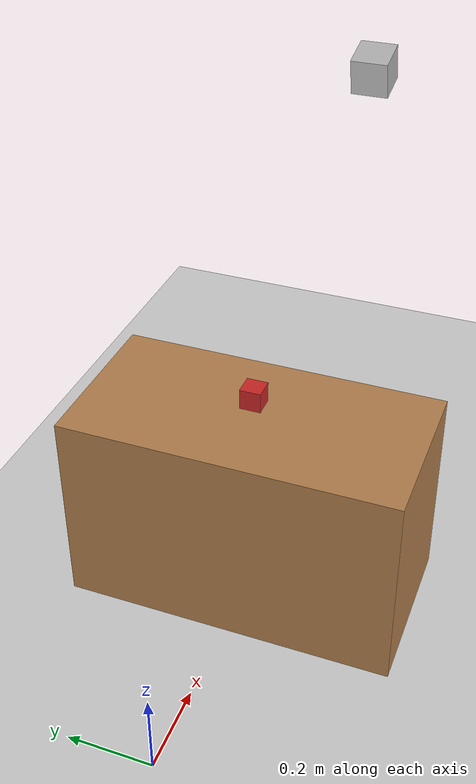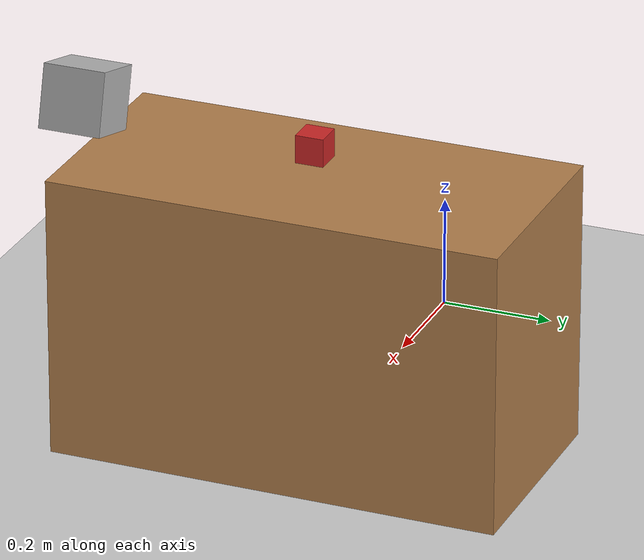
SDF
<?xml version="1.0" ?>
<sdf version="1.6">
  <world name="default">

    <include>
      <uri>model://sun</uri>
    </include>
    <include>
      <uri>model://ground_plane</uri>
    </include>

    <model name="table_box">
      <static>true</static> <pose>0.6 0.0 0.25 0 0 0</pose> <link name="link">
        <visual name="visual">
          <geometry>
            <box>
              <size>0.4 0.8 0.5</size> </box>
          </geometry>
          <material>
            <script>
              <uri>file://media/materials/scripts/gazebo.material</uri>
              <name>Gazebo/Wood</name>
            </script>
          </material>
        </visual>
        <collision name="collision">
          <geometry>
            <box>
              <size>0.4 0.8 0.5</size>
            </box>
          </geometry>
        </collision>
      </link>
    </model>

    <model name="red_cube">
      <static>false</static> <pose>0.6 0.0 0.55 0 0 0</pose> <link name="link">
        <inertial>
          <mass>0.1</mass> <inertia>
            <ixx>0.0001</ixx> <ixy>0</ixy> <ixz>0</ixz>
            <iyy>0.0001</iyy> <iyz>0</iyz>
            <izz>0.0001</izz>
          </inertia>
        </inertial>
        <visual name="visual">
          <geometry>
            <box>
              <size>0.05 0.05 0.05</size> </box>
          </geometry>
          <material>
            <script>
              <uri>file://media/materials/scripts/gazebo.material</uri>
              <name>Gazebo/Red</name>
            </script>
          </material>
        </visual>
        <collision name="collision">
          <geometry>
            <box>
              <size>0.05 0.05 0.05</size>
            </box>
          </geometry>
        </collision>
      </link>
    </model>

    <model name="world_camera">
      <static>true</static>
      <pose>1.5 0.0 1.0 0 0.25 3.14</pose>
      <link name="link">
        <visual name="visual">
          <geometry>
            <box>
              <size>0.1 0.1 0.1</size>
            </box>
          </geometry>
        </visual>
        <sensor name="camera" type="camera">
          <camera>
            <horizontal_fov>1.047</horizontal_fov>
            <image>
              <width>640</width>
              <height>480</height>
            </image>
            <clip>
              <near>0.1</near>
              <far>100</far>
            </clip>
          </camera>
          <always_on>1</always_on>
          <update_rate>30</update_rate>
          <visualize>true</visualize>
          <plugin name="camera_controller" filename="libgazebo_ros_camera.so">
            <alwaysOn>true</alwaysOn>
            <updateRate>0.0</updateRate>
            <cameraName>camera</cameraName>
            <imageTopicName>image_raw</imageTopicName>
            <cameraInfoTopicName>camera_info</cameraInfoTopicName>
            <frameName>camera_link</frameName>
            <hackBaseline>0.07</hackBaseline>
          </plugin>
        </sensor>
      </link>
    </model>

  </world>

</sdf>
